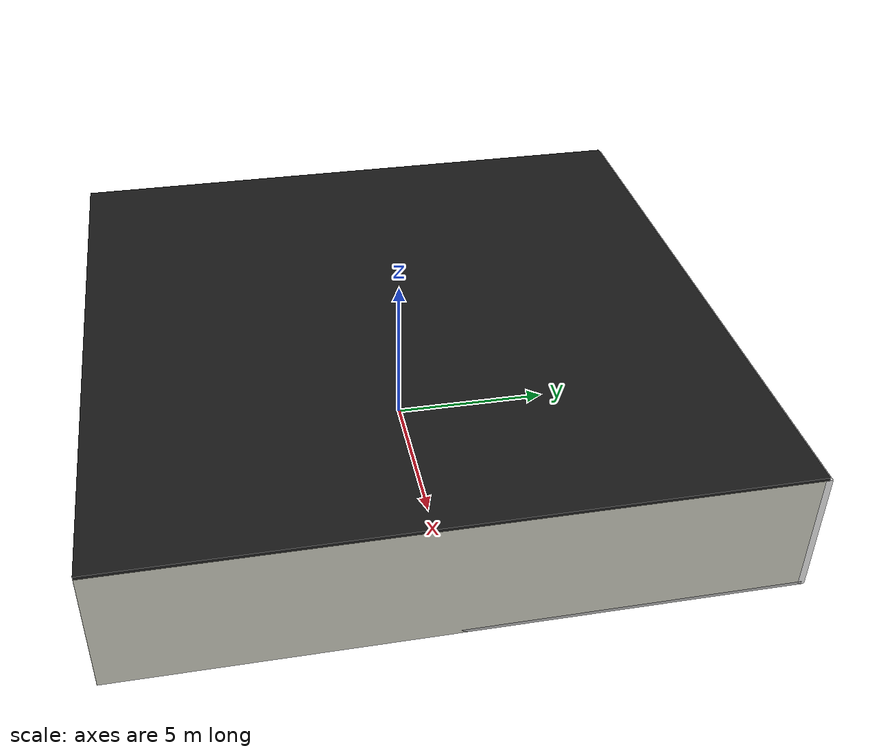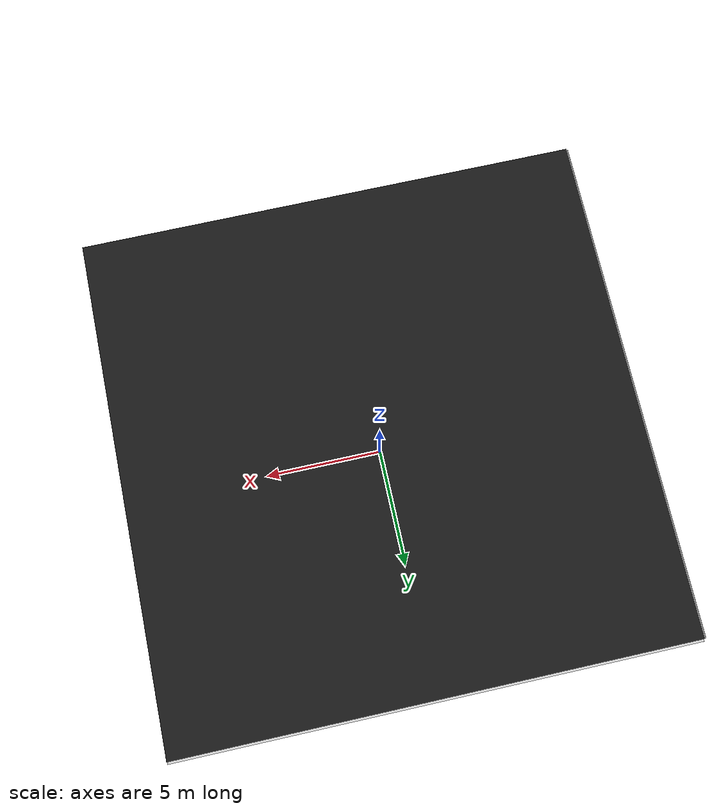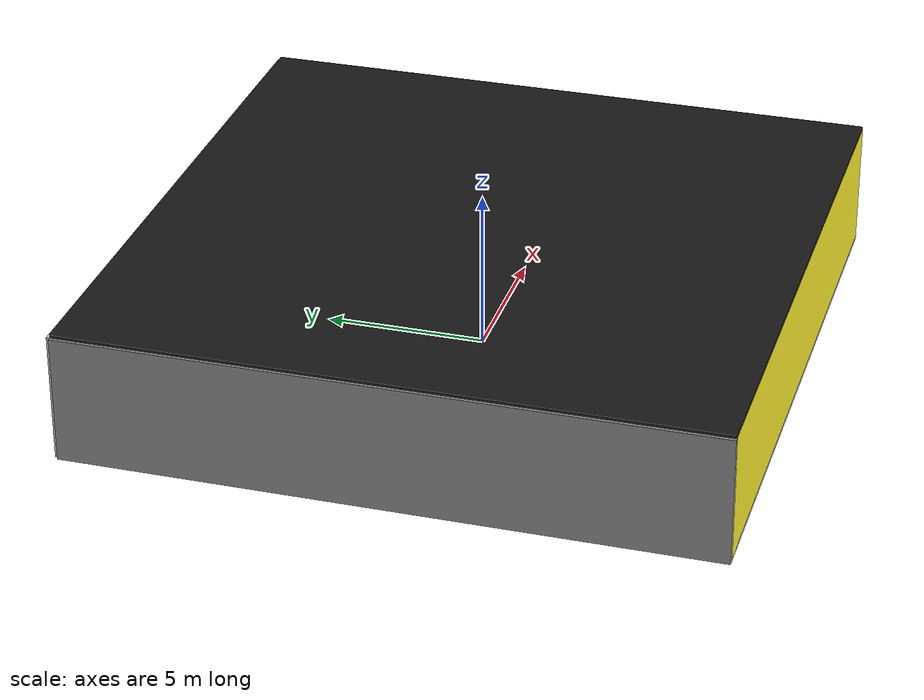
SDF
<sdf version="1.4">
 <world name="default">
  <physics type="ode">
   <max_step_size>0.001</max_step_size>
   <real_time_factor>1</real_time_factor>
   <real_time_update_rate>1000</real_time_update_rate>
   <gravity>0 0 -9.8</gravity>
  </physics>
  <scene><ambient>0.4 0.4 0.4 1</ambient><background>0.7 0.7 0.7 1</background><shadows>1</shadows></scene>
  <model name="Surrounding">
   <static>1</static>
   <link name="Ceiling">
    <collision name="Ceiling_Collision"><geometry><box><size>20 20 0.1</size></box></geometry></collision>
    <visual name="Ceiling_Visual">
     <geometry><box><size>20 20 0.1</size></box></geometry>
     <material>
      <script><uri>file://media/materials/scripts/gazebo.material</uri><name>Gazebo/FlatBlack</name></script>
     </material>
    </visual>
    <pose>0 0 4.05 0 0 0</pose>
   </link>
   <link name="Wall_South">
    <collision name="Wall_South_Collision">
     <geometry><box><size>20 0 4</size></box></geometry>
     <pose>0 0 2 0 -0 0</pose>
    </collision>
    <visual name="Wall_South_Visual">
     <pose>0 0 2 0 -0 0</pose>
     <geometry><box><size>20 0 4</size></box></geometry>
     <material>
      <script><uri>file://media/materials/scripts/gazebo.material</uri><name>Gazebo/Yellow</name></script>
     </material>
    </visual>
    <velocity_decay><linear>0</linear><angular>0</angular></velocity_decay>
    <pose>0 -10 0 0 -0 0</pose>
   </link>
   <link name="Wall_East">
    <collision name="Wall_21_Collision">
     <geometry><box><size>20 0 4</size></box></geometry>
     <pose>0 0 2 0 -0 0</pose>
    </collision>
    <visual name="Wall_21_Visual">
     <pose>0 0 2 0 -0 0</pose>
     <geometry><box><size>20 0 4</size></box></geometry>
     <material>
      <script><uri>file://media/materials/scripts/gazebo.material</uri><name>Gazebo/PaintedWall</name></script>
     </material>
    </visual>
    <velocity_decay><linear>0</linear><angular>0</angular></velocity_decay>
    <pose>10 0 0 0 -0 1.5708</pose>
   </link>
   <link name="Wall_North">
    <collision name="Wall_22_Collision">
     <geometry><box><size>20 0.2 4</size></box></geometry>
     <pose>0 0 2 0 -0 0</pose>
    </collision>
    <visual name="Wall_22_Visual">
     <pose>0 0 2 0 -0 0</pose>
     <geometry><box><size>20 0.2 4</size></box></geometry>
     <material>
      <script><uri>file://media/materials/scripts/gazebo.material</uri><name>Gazebo/White</name></script>
     </material>
    </visual>
    <velocity_decay><linear>0</linear><angular>0</angular></velocity_decay>
    <pose>0 10 0 0 -0 0</pose>
   </link>
   <link name="Wall_West">
    <collision name="Wall_23_Collision">
     <geometry><box><size>20 0.2 4</size></box></geometry>
     <pose>0 0 2 0 -0 0</pose>
    </collision>
    <visual name="Wall_23_Visual">
     <pose>0 0 2 0 -0 0</pose>
     <geometry><box><size>20 0.2 4</size></box></geometry>
     <material>
      <script><uri>file://media/materials/scripts/gazebo.material</uri><name>Gazebo/Grey</name></script>
     </material>
    </visual>
    <velocity_decay><linear>0</linear><angular>0</angular></velocity_decay>
    <pose>-10 0 0 0 0 -1.5708</pose>
   </link>
   <link name="Ground_link">
    <collision name="collision">
     <pose>0 0 .05 0 -0 0</pose>
     <geometry><box><size>20 20 0.1</size></box></geometry>
    </collision>
    <visual name="visual">
     <pose>0 0 .05 0 -0 0</pose>
     <geometry><box><size>20 20 0.1</size></box></geometry>
     <material>
      <script><uri>file://media/materials/scripts/gazebo.material</uri><name>Gazebo/JointAnchor</name></script>
     </material>
    </visual>
   </link>
   <static>1</static>
  </model>
  <spherical_coordinates>
   <surface_model>EARTH_WGS84</surface_model>
   <latitude_deg>0</latitude_deg>
   <longitude_deg>0</longitude_deg>
   <elevation>0</elevation>
   <heading_deg>0</heading_deg>
  </spherical_coordinates>
  <light name="lightball_0" type="diffuse">
   <diffuse>0.8 0.8 0.8 1</diffuse>
   <specular>0.2 0.2 0.2 1</specular>
   <attenuation>
    <range>100</range>
    <constant>0.7</constant>
    <linear>0.01</linear>
    <quadratic>0.001</quadratic>
   </attenuation>
   <direction>-0.5 0.1 -0.9</direction>
   <pose>9.29470400413 0.658560161644 3.13467858957 0 0 0</pose>
  </light>
  <light name="lightball_1" type="diffuse">
   <diffuse>0.8 0.8 0.8 1</diffuse>
   <specular>0.2 0.2 0.2 1</specular>
   <attenuation>
    <range>100</range>
    <constant>0.7</constant>
    <linear>0.01</linear>
    <quadratic>0.001</quadratic>
   </attenuation>
   <direction>-0.5 0.1 -0.9</direction>
   <pose>1.53035436912 -7.13067707694 1.32032330962 0 0 0</pose>
  </light>
  <light name="lightball_2" type="diffuse">
   <diffuse>0.8 0.8 0.8 1</diffuse>
   <specular>0.2 0.2 0.2 1</specular>
   <attenuation>
    <range>100</range>
    <constant>0.7</constant>
    <linear>0.01</linear>
    <quadratic>0.001</quadratic>
   </attenuation>
   <direction>-0.5 0.1 -0.9</direction>
   <pose>3.15712265971 2.89372015537 2.74408947294 0 0 0</pose>
  </light>
  <light name="lightball_3" type="diffuse">
   <diffuse>0.8 0.8 0.8 1</diffuse>
   <specular>0.2 0.2 0.2 1</specular>
   <attenuation>
    <range>100</range>
    <constant>0.7</constant>
    <linear>0.01</linear>
    <quadratic>0.001</quadratic>
   </attenuation>
   <direction>-0.5 0.1 -0.9</direction>
   <pose>-0.684222965271 -2.9673309966 1.29020135367 0 0 0</pose>
  </light>
  <light name="lightball_4" type="diffuse">
   <diffuse>0.8 0.8 0.8 1</diffuse>
   <specular>0.2 0.2 0.2 1</specular>
   <attenuation>
    <range>100</range>
    <constant>0.7</constant>
    <linear>0.01</linear>
    <quadratic>0.001</quadratic>
   </attenuation>
   <direction>-0.5 0.1 -0.9</direction>
   <pose>5.92622865086 5.23273562956 3.49252868107 0 0 0</pose>
  </light>
  <light name="lightball_5" type="diffuse">
   <diffuse>0.8 0.8 0.8 1</diffuse>
   <specular>0.2 0.2 0.2 1</specular>
   <attenuation>
    <range>100</range>
    <constant>0.7</constant>
    <linear>0.01</linear>
    <quadratic>0.001</quadratic>
   </attenuation>
   <direction>-0.5 0.1 -0.9</direction>
   <pose>-5.43486012832 8.0790316201 2.67429128241 0 0 0</pose>
  </light>
  <light name="lightball_6" type="diffuse">
   <diffuse>0.8 0.8 0.8 1</diffuse>
   <specular>0.2 0.2 0.2 1</specular>
   <attenuation>
    <range>100</range>
    <constant>0.7</constant>
    <linear>0.01</linear>
    <quadratic>0.001</quadratic>
   </attenuation>
   <direction>-0.5 0.1 -0.9</direction>
   <pose>4.40046119308 6.7660110671 2.89000948852 0 0 0</pose>
  </light>
  <light name="lightball_7" type="diffuse">
   <diffuse>0.8 0.8 0.8 1</diffuse>
   <specular>0.2 0.2 0.2 1</specular>
   <attenuation>
    <range>100</range>
    <constant>0.7</constant>
    <linear>0.01</linear>
    <quadratic>0.001</quadratic>
   </attenuation>
   <direction>-0.5 0.1 -0.9</direction>
   <pose>4.15126719398 5.56827123824 3.83001393566 0 0 0</pose>
  </light>
  <light name="lightball_8" type="diffuse">
   <diffuse>0.8 0.8 0.8 1</diffuse>
   <specular>0.2 0.2 0.2 1</specular>
   <attenuation>
    <range>100</range>
    <constant>0.7</constant>
    <linear>0.01</linear>
    <quadratic>0.001</quadratic>
   </attenuation>
   <direction>-0.5 0.1 -0.9</direction>
   <pose>-9.64820252837 -6.56296179863 1.29247656114 0 0 0</pose>
  </light>
  <include><uri>model://table</uri><pose>-7.68954194223 2.23238004961 0 0 0 1.73982462731</pose></include>
  <include>
   <uri>model://robocup_3Dsim_goal</uri>
   <pose>-2.42644621427 -7.94922608836 0 0 0 0.964063371898</pose>
  </include>
  <include>
   <uri>model://robocup_3Dsim_goal</uri>
   <pose>-1.47725592837 -2.25070352451 0 0 0 2.47822106039</pose>
  </include>
  <include>
   <uri>model://construction_cone</uri>
   <pose>0.977068759465 -7.48498157994 0 0 0 1.89352006943</pose>
  </include>
  <include>
   <uri>model://textured_shapes</uri>
   <pose>0.34368444758 -2.55526192038 0 0 0 2.69945915206</pose>
  </include>
  <include>
   <uri>model://robocup_3Dsim_goal</uri>
   <pose>5.57094245191 -2.56643279996 0 0 0 0.417198783768</pose>
  </include>
  <include>
   <uri>model://robocup_3Dsim_goal</uri>
   <pose>4.391189012 5.48286844168 0 0 0 3.06663299808</pose>
  </include>
 </world>
</sdf>

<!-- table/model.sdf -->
<sdf version="1.5">
  <model name="table">
    <static>true</static>
    <link name="link">
      <collision name="surface">
        <pose>0 0 1.0 0 0 0</pose>
        <geometry>
          <box>
            <size>1.5 0.8 0.03</size>
          </box>
        </geometry>
        <surface>
          <friction>
            <ode>
              <mu>0.6</mu>
              <mu2>0.6</mu2>
            </ode>
          </friction>
        </surface>
      </collision>
      <visual name="visual1">
        <pose>0 0 1.0 0 0 0</pose>
        <geometry>
          <box>
            <size>1.5 0.8 0.03</size>
          </box>
        </geometry>
        <material>
          <script>
            <uri>model://media/materials/scripts/gazebo.material</uri>
            <name>Gazebo/Wood</name>
          </script>
        </material>
      </visual>
      <collision name="front_left_leg">
        <pose>0.68 0.38 0.5 0 0 0</pose>
        <geometry>
          <cylinder>
            <radius>0.02</radius>
            <length>1.0</length>
          </cylinder>
        </geometry>
      </collision>
      <visual name="front_left_leg">
        <pose>0.68 0.38 0.5 0 0 0</pose>
        <geometry>
          <cylinder>
            <radius>0.02</radius>
            <length>1.0</length>
          </cylinder>
        </geometry>
        <material>
          <script>
            <uri>model://media/materials/scripts/gazebo.material</uri>
            <name>Gazebo/Grey</name>
          </script>
        </material>
      </visual>
      <collision name="front_right_leg">
        <pose>0.68 -0.38 0.5 0 0 0</pose>
        <geometry>
          <cylinder>
            <radius>0.02</radius>
            <length>1.0</length>
          </cylinder>
        </geometry>
      </collision>
      <visual name="front_right_leg">
        <pose>0.68 -0.38 0.5 0 0 0</pose>
        <geometry>
          <cylinder>
            <radius>0.02</radius>
            <length>1.0</length>
          </cylinder>
        </geometry>
        <material>
          <script>
            <uri>model://media/materials/scripts/gazebo.material</uri>
            <name>Gazebo/Grey</name>
          </script>
        </material>
      </visual>
      <collision name="back_right_leg">
        <pose>-0.68 -0.38 0.5 0 0 0</pose>
        <geometry>
          <cylinder>
            <radius>0.02</radius>
            <length>1.0</length>
          </cylinder>
        </geometry>
      </collision>
      <visual name="back_right_leg">
        <pose>-0.68 -0.38 0.5 0 0 0</pose>
        <geometry>
          <cylinder>
            <radius>0.02</radius>
            <length>1.0</length>
          </cylinder>
        </geometry>
        <material>
          <script>
            <uri>model://media/materials/scripts/gazebo.material</uri>
            <name>Gazebo/Grey</name>
          </script>
        </material>
      </visual>
      <collision name="back_left_leg">
        <pose>-0.68 0.38 0.5 0 0 0</pose>
        <geometry>
          <cylinder>
            <radius>0.02</radius>
            <length>1.0</length>
          </cylinder>
        </geometry>
      </collision>
      <visual name="back_left_leg">
        <pose>-0.68 0.38 0.5 0 0 0</pose>
        <geometry>
          <cylinder>
            <radius>0.02</radius>
            <length>1.0</length>
          </cylinder>
        </geometry>
        <material>
          <script>
            <uri>model://media/materials/scripts/gazebo.material</uri>
            <name>Gazebo/Grey</name>
          </script>
        </material>
      </visual>
    </link>
  </model>
</sdf>

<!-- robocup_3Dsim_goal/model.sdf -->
<sdf version="1.5">
  <model name="robocup_3d_goal">
    <static>true</static>
    <link name="left_post">
      <pose>0 1.05 0.45 0 0 0</pose>
      <collision name="collision">
        <geometry>
          <cylinder>
            <radius>0.05</radius>
            <length>0.9</length>
          </cylinder>
        </geometry>
      </collision>
      <visual name="visual">
        <geometry>
          <cylinder>
            <radius>0.05</radius>
            <length>0.9</length>
          </cylinder>
        </geometry>
        <material>
          <script>
            <uri>file://media/materials/scripts/gazebo.material</uri>
            <name>Gazebo/ZincYellow</name>
          </script>
        </material>
      </visual>
    </link>
    <link name="left_support_horiz_lower">
      <pose>0.30 1.05 0.01 0 0 0</pose>
      <collision name="collision">
        <geometry>
          <box>
            <size>0.50 0.02 0.02</size>
          </box>
        </geometry>
      </collision>
      <visual name="visual">
        <geometry>
          <box>
            <size>0.50 0.02 0.02</size>
          </box>
        </geometry>
        <material>
          <script>
            <uri>file://media/materials/scripts/gazebo.material</uri>
            <name>Gazebo/White</name>
          </script>
        </material>
      </visual>
    </link>
    <link name="left_support_horiz_upper">
      <pose>0.30 1.05 0.79 0 0 0</pose>
      <collision name="collision">
        <geometry>
          <box>
            <size>0.50 0.02 0.02</size>
          </box>
        </geometry>
      </collision>
      <visual name="visual">
        <geometry>
          <box>
            <size>0.50 0.02 0.02</size>
          </box>
        </geometry>
        <material>
          <script>
            <uri>file://media/materials/scripts/gazebo.material</uri>
            <name>Gazebo/White</name>
          </script>
        </material>
      </visual>
    </link>
    <link name="left_support_vertical">
      <pose>0.56 1.05 0.4 0 1.5708 0</pose>
      <collision name="collision">
        <geometry>
          <box>
            <size>0.80 0.02 0.02</size>
          </box>
        </geometry>
      </collision>
      <visual name="visual">
        <geometry>
          <box>
            <size>0.80 0.02 0.02</size>
          </box>
        </geometry>
        <material>
          <script>
            <uri>file://media/materials/scripts/gazebo.material</uri>
            <name>Gazebo/White</name>
          </script>
        </material>
      </visual>
    </link>
    <link name="right_support_horiz_lower">
      <pose>0.30 -1.05 0.01 0 0 0</pose>
      <collision name="collision">
        <geometry>
          <box>
            <size>0.50 0.02 0.02</size>
          </box>
        </geometry>
      </collision>
      <visual name="visual">
        <geometry>
          <box>
            <size>0.50 0.02 0.02</size>
          </box>
        </geometry>
        <material>
          <script>
            <uri>file://media/materials/scripts/gazebo.material</uri>
            <name>Gazebo/White</name>
          </script>
        </material>
      </visual>
    </link>
    <link name="right_support_horiz_upper">
      <pose>0.30 -1.05 0.79 0 0 0</pose>
      <collision name="collision">
        <geometry>
          <box>
            <size>0.50 0.02 0.02</size>
          </box>
        </geometry>
      </collision>
      <visual name="visual">
        <geometry>
          <box>
            <size>0.50 0.02 0.02</size>
          </box>
        </geometry>
        <material>
          <script>
            <uri>file://media/materials/scripts/gazebo.material</uri>
            <name>Gazebo/White</name>
          </script>
        </material>
      </visual>
    </link>
    <link name="right_support_vertical">
      <pose>0.56 -1.05 0.4 0 1.5708 0</pose>
      <collision name="collision">
        <geometry>
          <box>
            <size>0.80 0.02 0.02</size>
          </box>
        </geometry>
      </collision>
      <visual name="visual">
        <geometry>
          <box>
            <size>0.80 0.02 0.02</size>
          </box>
        </geometry>
        <material>
          <script>
            <uri>file://media/materials/scripts/gazebo.material</uri>
            <name>Gazebo/White</name>
          </script>
        </material>
      </visual>
    </link>
    <link name="center_support_horiz_lower">
      <pose>0.56 0 0.01 0 1.5708 0</pose>
      <collision name="collision">
        <geometry>
          <box>
            <size>0.02 2.08 0.02</size>
          </box>
        </geometry>
      </collision>
      <visual name="visual">
        <geometry>
          <box>
            <size>0.02 2.08 0.02</size>
          </box>
        </geometry>
        <material>
          <script>
            <uri>file://media/materials/scripts/gazebo.material</uri>
            <name>Gazebo/White</name>
          </script>
        </material>
      </visual>
    </link>
    <link name="center_support_horiz_upper">
      <pose>0.56 0 0.79 0 1.5708 0</pose>
      <collision name="collision">
        <geometry>
          <box>
            <size>0.02 2.08 0.02</size>
          </box>
        </geometry>
      </collision>
      <visual name="visual">
        <geometry>
          <box>
            <size>0.02 2.08 0.02</size>
          </box>
        </geometry>
        <material>
          <script>
            <uri>file://media/materials/scripts/gazebo.material</uri>
            <name>Gazebo/White</name>
          </script>
        </material>
      </visual>
    </link>
    <link name="right_post">
      <pose>0 -1.05 0.45 0 0 0</pose>
      <collision name="collision">
        <geometry>
          <cylinder>
            <radius>0.05</radius>
            <length>0.9</length>
          </cylinder>
        </geometry>
      </collision>
      <visual name="visual">
        <geometry>
          <cylinder>
            <radius>0.05</radius>
            <length>0.9</length>
          </cylinder>
        </geometry>
        <material>
          <script>
            <uri>file://media/materials/scripts/gazebo.material</uri>
            <name>Gazebo/ZincYellow</name>
          </script>
        </material>
      </visual>
    </link>
    <link name="crossbar">
      <pose>0 0 0.85 1.57 1.57 0</pose>
      <collision name="collision">
        <geometry>
          <cylinder>
            <radius>0.05</radius>
            <length>2.0</length>
          </cylinder>
        </geometry>
      </collision>
      <visual name="visual">
        <geometry>
          <cylinder>
            <radius>0.05</radius>
            <length>2.0</length>
          </cylinder>
        </geometry>
        <material>
          <script>
            <uri>file://media/materials/scripts/gazebo.material</uri>
            <name>Gazebo/ZincYellow</name>
          </script>
        </material>
      </visual>
    </link>
    <link name="center_net">
      <pose>0.56 0 0.40 0 0 0</pose>
      <collision name="collision">
        <geometry>
          <box>
            <size>0.01 2.1 0.80</size>
          </box>
        </geometry>
      </collision>
      <visual name="visual">
        <geometry>
          <box>
            <size>0.01 2.1 0.80</size>
          </box>
        </geometry>
        <material>
          <script>
            <uri>model://../model_source/models/robocup09_spl_field/materials/scripts/</uri>
            <uri>model://../model_source/models/robocup09_spl_field/materials/textures/</uri>
            <name>RoboCup/Net</name>
          </script>
        </material>
      </visual>
    </link>
    <link name="left_net">
      <pose>0.30 1.05 0.40 0 0 0</pose>
      <collision name="collision">
        <geometry>
          <box>
            <size>0.50 0.01 0.76</size>
          </box>
        </geometry>
      </collision>
      <visual name="visual">
        <geometry>
          <box>
            <size>0.50 0.01 0.76</size>
          </box>
        </geometry>
        <material>
          <script>
            <uri>model://../model_source/models/robocup09_spl_field/materials/scripts/</uri>
            <uri>model://../model_source/models/robocup09_spl_field/materials/textures/</uri>
            <name>RoboCup/Net</name>
          </script>
        </material>
      </visual>
    </link>
    <link name="right_net">
      <pose>0.30 -1.05 0.40 0 0 0</pose>
      <collision name="collision">
        <geometry>
          <box>
            <size>0.50 0.01 0.76</size>
          </box>
        </geometry>
      </collision>
      <visual name="visual">
        <geometry>
          <box>
            <size>0.50 0.01 0.76</size>
          </box>
        </geometry>
        <material>
          <script>
            <uri>model://../model_source/models/robocup09_spl_field/materials/scripts/</uri>
            <uri>model://../model_source/models/robocup09_spl_field/materials/textures/</uri>
            <name>RoboCup/Net</name>
          </script>
        </material>
      </visual>
    </link>
  </model>
</sdf>

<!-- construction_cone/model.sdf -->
<sdf version="1.5">
  <model name="Construction Cone">
    <link name="link">
      <collision name="collision">
        <geometry>
          <mesh>
            <scale>10 10 10</scale>
            <uri>file://isr-testbed/construction_cone/meshes/construction_cone.dae</uri>
          </mesh>
        </geometry>
      </collision>
      <visual name="visual">
        <geometry>
          <mesh>
            <scale>10 10 10</scale>
            <uri>file://isr-testbed/construction_cone/meshes/construction_cone.dae</uri>
          </mesh>
        </geometry>
      </visual>
    </link>
  </model>
</sdf>

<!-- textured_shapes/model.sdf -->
<sdf version="1.6">
  <model name="textured_shapes">
    <pose>0 0 0.5 0 0 0</pose>
    <link name="box">
      <pose>0 -1.5 0 0 0 0</pose>
      <collision name="collision">
        <geometry>
          <box>
            <size>1 1 1</size>
          </box>
        </geometry>
      </collision>
      <visual name="visual">
        <geometry>
          <box>
            <size>1 1 1</size>
          </box>
        </geometry>
        <material>
          <script>
            <uri>model://../model_source/models/textured_shapes/materials/scripts</uri>
            <uri>model://../model_source/models/textured_shapes/materials/textures</uri>
            <name>TexturedShape/Squares</name>
          </script>
        </material>
      </visual>
    </link>
    <link name="sphere">
      <collision name="collision">
        <geometry>
          <sphere>
            <radius>0.5</radius>
          </sphere>
        </geometry>
      </collision>
      <visual name="visual">
        <geometry>
          <sphere>
            <radius>0.5</radius>
          </sphere>
        </geometry>
        <material>
          <script>
            <uri>model://../model_source/models/textured_shapes/materials/scripts</uri>
            <uri>model://../model_source/models/textured_shapes/materials/textures</uri>
            <name>TexturedShape/Squares</name>
          </script>
        </material>
      </visual>
    </link>
    <link name="cylinder">
      <pose>0 1.5 0 0 0 0</pose>
      <collision name="collision">
        <geometry>
          <cylinder>
            <radius>0.5</radius>
            <length>1</length>
          </cylinder>
        </geometry>
      </collision>
      <visual name="visual">
        <geometry>
          <cylinder>
            <radius>0.5</radius>
            <length>1</length>
          </cylinder>
        </geometry>
        <material>
          <script>
            <uri>model://../model_source/models/textured_shapes/materials/scripts</uri>
            <uri>model://../model_source/models/textured_shapes/materials/textures</uri>
            <name>TexturedShape/Squares</name>
          </script>
        </material>
      </visual>
    </link>
  </model>
</sdf>
